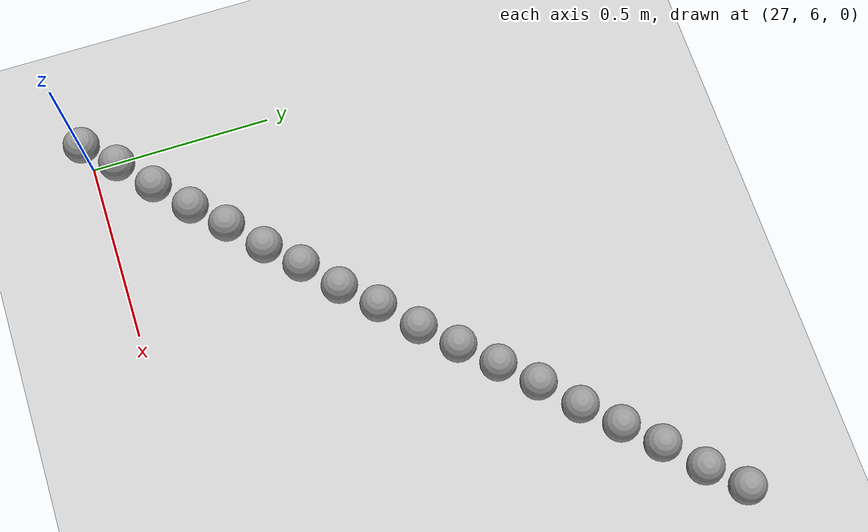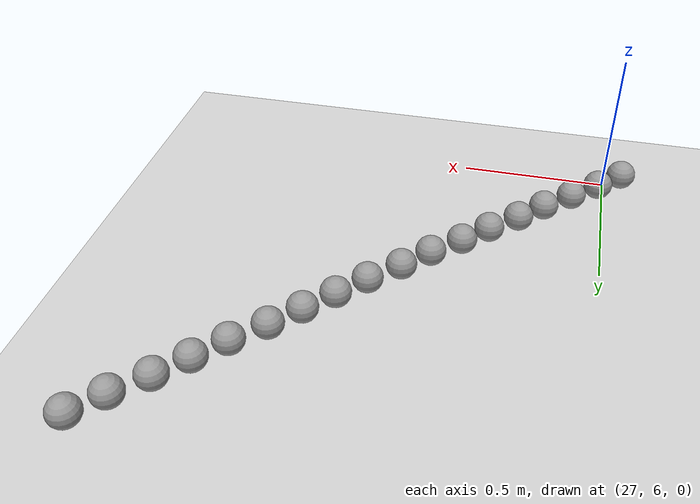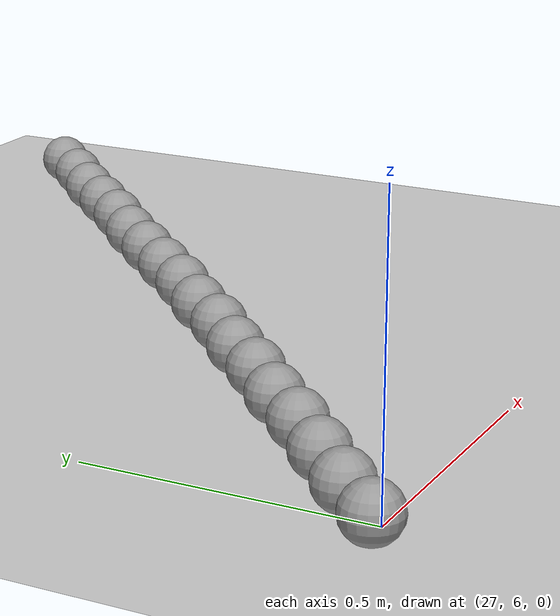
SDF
<sdf version="1.6">
 <world name="default">
  <model name="ground_plane">
   <static>1</static>
   <link name="link">
    <collision name="collision">
     <geometry><plane><normal>0 0 1</normal><size>100 100</size></plane></geometry>
     <surface><friction><ode><mu>100</mu><mu2>50</mu2></ode></friction></surface>
    </collision>
    <visual name="visual">
     <cast_shadows>0</cast_shadows>
     <geometry><plane><normal>0 0 1</normal><size>100 100</size></plane></geometry>
     <material>
      <script><uri>file://media/materials/scripts/gazebo.material</uri><name>Gazebo/Grey</name></script>
     </material>
    </visual>
   </link>
  </model>
  <model name="unit_sphere_0_280">
   <pose>28.370000 7.390000 0.050000 0 -0 0</pose>
   <link name="link">
    <inertial>
     <mass>1</mass>
     <inertia><ixx>0.1</ixx><ixy>0</ixy><ixz>0</ixz><iyy>0.1</iyy><iyz>0</iyz><izz>0.1</izz></inertia>
    </inertial>
    <collision name="collision"><geometry><sphere><radius>0.050000</radius></sphere></geometry></collision>
    <visual name="visual">
     <geometry><sphere><radius>0.050000</radius></sphere></geometry>
     <material>
      <script><name>Gazebo/Grey</name><uri>file://media/materials/scripts/gazebo.material</uri></script>
     </material>
    </visual>
   </link>
  </model>
  <model name="unit_sphere_0_281">
   <pose>28.290000 7.306000 0.050000 0 -0 0</pose>
   <link name="link">
    <inertial>
     <mass>1</mass>
     <inertia><ixx>0.1</ixx><ixy>0</ixy><ixz>0</ixz><iyy>0.1</iyy><iyz>0</iyz><izz>0.1</izz></inertia>
    </inertial>
    <collision name="collision"><geometry><sphere><radius>0.050000</radius></sphere></geometry></collision>
    <visual name="visual">
     <geometry><sphere><radius>0.050000</radius></sphere></geometry>
     <material>
      <script><name>Gazebo/Grey</name><uri>file://media/materials/scripts/gazebo.material</uri></script>
     </material>
    </visual>
   </link>
  </model>
  <model name="unit_sphere_0_282">
   <pose>28.200000 7.222000 0.050000 0 -0 0</pose>
   <link name="link">
    <inertial>
     <mass>1</mass>
     <inertia><ixx>0.1</ixx><ixy>0</ixy><ixz>0</ixz><iyy>0.1</iyy><iyz>0</iyz><izz>0.1</izz></inertia>
    </inertial>
    <collision name="collision"><geometry><sphere><radius>0.050000</radius></sphere></geometry></collision>
    <visual name="visual">
     <geometry><sphere><radius>0.050000</radius></sphere></geometry>
     <material>
      <script><name>Gazebo/Grey</name><uri>file://media/materials/scripts/gazebo.material</uri></script>
     </material>
    </visual>
   </link>
  </model>
  <model name="unit_sphere_0_283">
   <pose>28.120000 7.138000 0.050000 0 -0 0</pose>
   <link name="link">
    <inertial>
     <mass>1</mass>
     <inertia><ixx>0.1</ixx><ixy>0</ixy><ixz>0</ixz><iyy>0.1</iyy><iyz>0</iyz><izz>0.1</izz></inertia>
    </inertial>
    <collision name="collision"><geometry><sphere><radius>0.050000</radius></sphere></geometry></collision>
    <visual name="visual">
     <geometry><sphere><radius>0.050000</radius></sphere></geometry>
     <material>
      <script><name>Gazebo/Grey</name><uri>file://media/materials/scripts/gazebo.material</uri></script>
     </material>
    </visual>
   </link>
  </model>
  <model name="unit_sphere_0_284">
   <pose>28.040000 7.054000 0.050000 0 -0 0</pose>
   <link name="link">
    <inertial>
     <mass>1</mass>
     <inertia><ixx>0.1</ixx><ixy>0</ixy><ixz>0</ixz><iyy>0.1</iyy><iyz>0</iyz><izz>0.1</izz></inertia>
    </inertial>
    <collision name="collision"><geometry><sphere><radius>0.050000</radius></sphere></geometry></collision>
    <visual name="visual">
     <geometry><sphere><radius>0.050000</radius></sphere></geometry>
     <material>
      <script><name>Gazebo/Grey</name><uri>file://media/materials/scripts/gazebo.material</uri></script>
     </material>
    </visual>
   </link>
  </model>
  <model name="unit_sphere_0_285">
   <pose>27.950000 6.970000 0.050000 0 -0 0</pose>
   <link name="link">
    <inertial>
     <mass>1</mass>
     <inertia><ixx>0.1</ixx><ixy>0</ixy><ixz>0</ixz><iyy>0.1</iyy><iyz>0</iyz><izz>0.1</izz></inertia>
    </inertial>
    <collision name="collision"><geometry><sphere><radius>0.050000</radius></sphere></geometry></collision>
    <visual name="visual">
     <geometry><sphere><radius>0.050000</radius></sphere></geometry>
     <material>
      <script><name>Gazebo/Grey</name><uri>file://media/materials/scripts/gazebo.material</uri></script>
     </material>
    </visual>
   </link>
  </model>
  <model name="unit_sphere_0_286">
   <pose>27.870000 6.886000 0.050000 0 -0 0</pose>
   <link name="link">
    <inertial>
     <mass>1</mass>
     <inertia><ixx>0.1</ixx><ixy>0</ixy><ixz>0</ixz><iyy>0.1</iyy><iyz>0</iyz><izz>0.1</izz></inertia>
    </inertial>
    <collision name="collision"><geometry><sphere><radius>0.050000</radius></sphere></geometry></collision>
    <visual name="visual">
     <geometry><sphere><radius>0.050000</radius></sphere></geometry>
     <material>
      <script><name>Gazebo/Grey</name><uri>file://media/materials/scripts/gazebo.material</uri></script>
     </material>
    </visual>
   </link>
  </model>
  <model name="unit_sphere_0_287">
   <pose>27.790000 6.802000 0.050000 0 -0 0</pose>
   <link name="link">
    <inertial>
     <mass>1</mass>
     <inertia><ixx>0.1</ixx><ixy>0</ixy><ixz>0</ixz><iyy>0.1</iyy><iyz>0</iyz><izz>0.1</izz></inertia>
    </inertial>
    <collision name="collision"><geometry><sphere><radius>0.050000</radius></sphere></geometry></collision>
    <visual name="visual">
     <geometry><sphere><radius>0.050000</radius></sphere></geometry>
     <material>
      <script><name>Gazebo/Grey</name><uri>file://media/materials/scripts/gazebo.material</uri></script>
     </material>
    </visual>
   </link>
  </model>
  <model name="unit_sphere_0_288">
   <pose>27.710000 6.718000 0.050000 0 -0 0</pose>
   <link name="link">
    <inertial>
     <mass>1</mass>
     <inertia><ixx>0.1</ixx><ixy>0</ixy><ixz>0</ixz><iyy>0.1</iyy><iyz>0</iyz><izz>0.1</izz></inertia>
    </inertial>
    <collision name="collision"><geometry><sphere><radius>0.050000</radius></sphere></geometry></collision>
    <visual name="visual">
     <geometry><sphere><radius>0.050000</radius></sphere></geometry>
     <material>
      <script><name>Gazebo/Grey</name><uri>file://media/materials/scripts/gazebo.material</uri></script>
     </material>
    </visual>
   </link>
  </model>
  <model name="unit_sphere_0_289">
   <pose>27.620000 6.634000 0.050000 0 -0 0</pose>
   <link name="link">
    <inertial>
     <mass>1</mass>
     <inertia><ixx>0.1</ixx><ixy>0</ixy><ixz>0</ixz><iyy>0.1</iyy><iyz>0</iyz><izz>0.1</izz></inertia>
    </inertial>
    <collision name="collision"><geometry><sphere><radius>0.050000</radius></sphere></geometry></collision>
    <visual name="visual">
     <geometry><sphere><radius>0.050000</radius></sphere></geometry>
     <material>
      <script><name>Gazebo/Grey</name><uri>file://media/materials/scripts/gazebo.material</uri></script>
     </material>
    </visual>
   </link>
  </model>
  <model name="unit_sphere_0_290">
   <pose>27.540000 6.550000 0.050000 0 -0 0</pose>
   <link name="link">
    <inertial>
     <mass>1</mass>
     <inertia><ixx>0.1</ixx><ixy>0</ixy><ixz>0</ixz><iyy>0.1</iyy><iyz>0</iyz><izz>0.1</izz></inertia>
    </inertial>
    <collision name="collision"><geometry><sphere><radius>0.050000</radius></sphere></geometry></collision>
    <visual name="visual">
     <geometry><sphere><radius>0.050000</radius></sphere></geometry>
     <material>
      <script><name>Gazebo/Grey</name><uri>file://media/materials/scripts/gazebo.material</uri></script>
     </material>
    </visual>
   </link>
  </model>
  <model name="unit_sphere_0_291">
   <pose>27.450000 6.470000 0.050000 0 -0 0</pose>
   <link name="link">
    <inertial>
     <mass>1</mass>
     <inertia><ixx>0.1</ixx><ixy>0</ixy><ixz>0</ixz><iyy>0.1</iyy><iyz>0</iyz><izz>0.1</izz></inertia>
    </inertial>
    <collision name="collision"><geometry><sphere><radius>0.050000</radius></sphere></geometry></collision>
    <visual name="visual">
     <geometry><sphere><radius>0.050000</radius></sphere></geometry>
     <material>
      <script><name>Gazebo/Grey</name><uri>file://media/materials/scripts/gazebo.material</uri></script>
     </material>
    </visual>
   </link>
  </model>
  <model name="unit_sphere_0_292">
   <pose>27.370000 6.390000 0.050000 0 -0 0</pose>
   <link name="link">
    <inertial>
     <mass>1</mass>
     <inertia><ixx>0.1</ixx><ixy>0</ixy><ixz>0</ixz><iyy>0.1</iyy><iyz>0</iyz><izz>0.1</izz></inertia>
    </inertial>
    <collision name="collision"><geometry><sphere><radius>0.050000</radius></sphere></geometry></collision>
    <visual name="visual">
     <geometry><sphere><radius>0.050000</radius></sphere></geometry>
     <material>
      <script><name>Gazebo/Grey</name><uri>file://media/materials/scripts/gazebo.material</uri></script>
     </material>
    </visual>
   </link>
  </model>
  <model name="unit_sphere_0_293">
   <pose>27.280000 6.310000 0.050000 0 -0 0</pose>
   <link name="link">
    <inertial>
     <mass>1</mass>
     <inertia><ixx>0.1</ixx><ixy>0</ixy><ixz>0</ixz><iyy>0.1</iyy><iyz>0</iyz><izz>0.1</izz></inertia>
    </inertial>
    <collision name="collision"><geometry><sphere><radius>0.050000</radius></sphere></geometry></collision>
    <visual name="visual">
     <geometry><sphere><radius>0.050000</radius></sphere></geometry>
     <material>
      <script><name>Gazebo/Grey</name><uri>file://media/materials/scripts/gazebo.material</uri></script>
     </material>
    </visual>
   </link>
  </model>
  <model name="unit_sphere_0_294">
   <pose>27.200000 6.230000 0.050000 0 -0 0</pose>
   <link name="link">
    <inertial>
     <mass>1</mass>
     <inertia><ixx>0.1</ixx><ixy>0</ixy><ixz>0</ixz><iyy>0.1</iyy><iyz>0</iyz><izz>0.1</izz></inertia>
    </inertial>
    <collision name="collision"><geometry><sphere><radius>0.050000</radius></sphere></geometry></collision>
    <visual name="visual">
     <geometry><sphere><radius>0.050000</radius></sphere></geometry>
     <material>
      <script><name>Gazebo/Grey</name><uri>file://media/materials/scripts/gazebo.material</uri></script>
     </material>
    </visual>
   </link>
  </model>
  <model name="unit_sphere_0_295">
   <pose>27.110000 6.150000 0.050000 0 -0 0</pose>
   <link name="link">
    <inertial>
     <mass>1</mass>
     <inertia><ixx>0.1</ixx><ixy>0</ixy><ixz>0</ixz><iyy>0.1</iyy><iyz>0</iyz><izz>0.1</izz></inertia>
    </inertial>
    <collision name="collision"><geometry><sphere><radius>0.050000</radius></sphere></geometry></collision>
    <visual name="visual">
     <geometry><sphere><radius>0.050000</radius></sphere></geometry>
     <material>
      <script><name>Gazebo/Grey</name><uri>file://media/materials/scripts/gazebo.material</uri></script>
     </material>
    </visual>
   </link>
  </model>
  <model name="unit_sphere_0_296">
   <pose>27.020000 6.070000 0.050000 0 -0 0</pose>
   <link name="link">
    <inertial>
     <mass>1</mass>
     <inertia><ixx>0.1</ixx><ixy>0</ixy><ixz>0</ixz><iyy>0.1</iyy><iyz>0</iyz><izz>0.1</izz></inertia>
    </inertial>
    <collision name="collision"><geometry><sphere><radius>0.050000</radius></sphere></geometry></collision>
    <visual name="visual">
     <geometry><sphere><radius>0.050000</radius></sphere></geometry>
     <material>
      <script><name>Gazebo/Grey</name><uri>file://media/materials/scripts/gazebo.material</uri></script>
     </material>
    </visual>
   </link>
  </model>
  <model name="unit_sphere_0_297">
   <pose>26.940000 5.990000 0.050000 0 -0 0</pose>
   <link name="link">
    <inertial>
     <mass>1</mass>
     <inertia><ixx>0.1</ixx><ixy>0</ixy><ixz>0</ixz><iyy>0.1</iyy><iyz>0</iyz><izz>0.1</izz></inertia>
    </inertial>
    <collision name="collision"><geometry><sphere><radius>0.050000</radius></sphere></geometry></collision>
    <visual name="visual">
     <geometry><sphere><radius>0.050000</radius></sphere></geometry>
     <material>
      <script><name>Gazebo/Grey</name><uri>file://media/materials/scripts/gazebo.material</uri></script>
     </material>
    </visual>
   </link>
  </model>
 </world>
</sdf>
